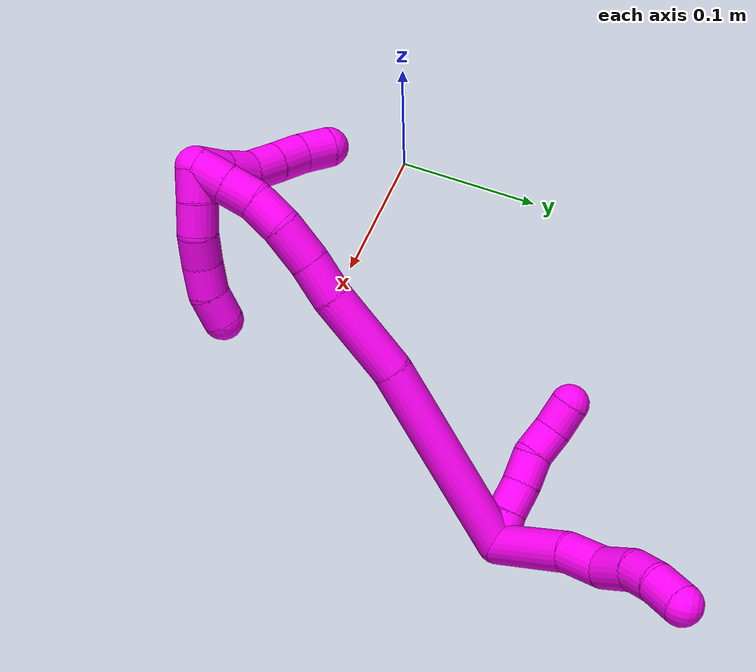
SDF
<sdf version="1.7">
 <world name="default">
  <model name="10">
   <static>0</static>
   <link name="10">
    <collision name="collision-cylinder-e_1_2_8">
     <pose>-0.006817 -0.016516 0.020872 0.669415 -0.25075 -0.087613</pose>
     <geometry><cylinder><radius>0.0125</radius><length>0.054951</length></cylinder></geometry>
     <surface>
      <friction><ode><mu>1.16</mu><mu2>1.16</mu2><slip1>0</slip1><slip2>0</slip2></ode></friction>
      <contact><ode><kp>1e+06</kp><kd>1</kd><max_vel>0</max_vel><min_depth>0.001</min_depth></ode></contact>
     </surface>
    </collision>
    <visual name="visual-cylinder-e_1_2_8">
     <pose>-0.006817 -0.016516 0.020872 0.669415 -0.25075 -0.087613</pose>
     <geometry><cylinder><radius>0.0125</radius><length>0.054951</length></cylinder></geometry>
     <material><ambient>1 0 0.964706 1</ambient></material>
    </visual>
    <collision name="collision-cylinder-e_2_8_9">
     <pose>-0.013803 -0.041739 0.052457 0.682459 -0.012135 -0.004309</pose>
     <geometry><cylinder><radius>0.0125</radius><length>0.027612</length></cylinder></geometry>
     <surface>
      <friction><ode><mu>1.16</mu><mu2>1.16</mu2><slip1>0</slip1><slip2>0</slip2></ode></friction>
      <contact><ode><kp>1e+06</kp><kd>1</kd><max_vel>0</max_vel><min_depth>0.001</min_depth></ode></contact>
     </surface>
    </collision>
    <visual name="visual-cylinder-e_2_8_9">
     <pose>-0.013803 -0.041739 0.052457 0.682459 -0.012135 -0.004309</pose>
     <geometry><cylinder><radius>0.0125</radius><length>0.027612</length></cylinder></geometry>
     <material><ambient>1 0 0.964706 1</ambient></material>
    </visual>
    <collision name="collision-cylinder-e_3_9_10">
     <pose>-0.017808 -0.059602 0.071115 0.856065 -0.306641 -0.140776</pose>
     <geometry><cylinder><radius>0.0125</radius><length>0.025431</length></cylinder></geometry>
     <surface>
      <friction><ode><mu>1.16</mu><mu2>1.16</mu2><slip1>0</slip1><slip2>0</slip2></ode></friction>
      <contact><ode><kp>1e+06</kp><kd>1</kd><max_vel>0</max_vel><min_depth>0.001</min_depth></ode></contact>
     </surface>
    </collision>
    <visual name="visual-cylinder-e_3_9_10">
     <pose>-0.017808 -0.059602 0.071115 0.856065 -0.306641 -0.140776</pose>
     <geometry><cylinder><radius>0.0125</radius><length>0.025431</length></cylinder></geometry>
     <material><ambient>1 0 0.964706 1</ambient></material>
    </visual>
    <collision name="collision-cylinder-e_4_10_11">
     <pose>-0.021675 -0.07676 0.085283 0.909912 -0.002795 -0.001367</pose>
     <geometry><cylinder><radius>0.0125</radius><length>0.020274</length></cylinder></geometry>
     <surface>
      <friction><ode><mu>1.16</mu><mu2>1.16</mu2><slip1>0</slip1><slip2>0</slip2></ode></friction>
      <contact><ode><kp>1e+06</kp><kd>1</kd><max_vel>0</max_vel><min_depth>0.001</min_depth></ode></contact>
     </surface>
    </collision>
    <visual name="visual-cylinder-e_4_10_11">
     <pose>-0.021675 -0.07676 0.085283 0.909912 -0.002795 -0.001367</pose>
     <geometry><cylinder><radius>0.0125</radius><length>0.020274</length></cylinder></geometry>
     <material><ambient>1 0 0.964706 1</ambient></material>
    </visual>
    <collision name="collision-cylinder-e_5_11_6">
     <pose>-0.019442 -0.092574 0.098712 0.825567 0.209646 0.092086</pose>
     <geometry><cylinder><radius>0.0125</radius><length>0.021732</length></cylinder></geometry>
     <surface>
      <friction><ode><mu>1.16</mu><mu2>1.16</mu2><slip1>0</slip1><slip2>0</slip2></ode></friction>
      <contact><ode><kp>1e+06</kp><kd>1</kd><max_vel>0</max_vel><min_depth>0.001</min_depth></ode></contact>
     </surface>
    </collision>
    <visual name="visual-cylinder-e_5_11_6">
     <pose>-0.019442 -0.092574 0.098712 0.825567 0.209646 0.092086</pose>
     <geometry><cylinder><radius>0.0125</radius><length>0.021732</length></cylinder></geometry>
     <material><ambient>1 0 0.964706 1</ambient></material>
    </visual>
    <collision name="collision-cylinder-e_1_2_12">
     <pose>-0.009189 0.003851 0.000857 -1.35177 -1.16529 0.972222</pose>
     <geometry><cylinder><radius>0.0125</radius><length>0.02</length></cylinder></geometry>
     <surface>
      <friction><ode><mu>1.16</mu><mu2>1.16</mu2><slip1>0</slip1><slip2>0</slip2></ode></friction>
      <contact><ode><kp>1e+06</kp><kd>1</kd><max_vel>0</max_vel><min_depth>0.001</min_depth></ode></contact>
     </surface>
    </collision>
    <visual name="visual-cylinder-e_1_2_12">
     <pose>-0.009189 0.003851 0.000857 -1.35177 -1.16529 0.972222</pose>
     <geometry><cylinder><radius>0.0125</radius><length>0.02</length></cylinder></geometry>
     <material><ambient>1 0 0.964706 1</ambient></material>
    </visual>
    <collision name="collision-cylinder-e_2_12_13">
     <pose>-0.027225 0.011523 0.004384 -0.961038 -1.08579 0.60945</pose>
     <geometry><cylinder><radius>0.0125</radius><length>0.02</length></cylinder></geometry>
     <surface>
      <friction><ode><mu>1.16</mu><mu2>1.16</mu2><slip1>0</slip1><slip2>0</slip2></ode></friction>
      <contact><ode><kp>1e+06</kp><kd>1</kd><max_vel>0</max_vel><min_depth>0.001</min_depth></ode></contact>
     </surface>
    </collision>
    <visual name="visual-cylinder-e_2_12_13">
     <pose>-0.027225 0.011523 0.004384 -0.961038 -1.08579 0.60945</pose>
     <geometry><cylinder><radius>0.0125</radius><length>0.02</length></cylinder></geometry>
     <material><ambient>1 0 0.964706 1</ambient></material>
    </visual>
    <collision name="collision-cylinder-e_3_13_14">
     <pose>-0.045553 0.018074 0.008685 -1.03209 -1.24732 0.775036</pose>
     <geometry><cylinder><radius>0.0125</radius><length>0.02</length></cylinder></geometry>
     <surface>
      <friction><ode><mu>1.16</mu><mu2>1.16</mu2><slip1>0</slip1><slip2>0</slip2></ode></friction>
      <contact><ode><kp>1e+06</kp><kd>1</kd><max_vel>0</max_vel><min_depth>0.001</min_depth></ode></contact>
     </surface>
    </collision>
    <visual name="visual-cylinder-e_3_13_14">
     <pose>-0.045553 0.018074 0.008685 -1.03209 -1.24732 0.775036</pose>
     <geometry><cylinder><radius>0.0125</radius><length>0.02</length></cylinder></geometry>
     <material><ambient>1 0 0.964706 1</ambient></material>
    </visual>
    <collision name="collision-cylinder-e_4_14_15">
     <pose>-0.063201 0.024484 0.014759 -0.691906 -0.955691 0.369088</pose>
     <geometry><cylinder><radius>0.0125</radius><length>0.02</length></cylinder></geometry>
     <surface>
      <friction><ode><mu>1.16</mu><mu2>1.16</mu2><slip1>0</slip1><slip2>0</slip2></ode></friction>
      <contact><ode><kp>1e+06</kp><kd>1</kd><max_vel>0</max_vel><min_depth>0.001</min_depth></ode></contact>
     </surface>
    </collision>
    <visual name="visual-cylinder-e_4_14_15">
     <pose>-0.063201 0.024484 0.014759 -0.691906 -0.955691 0.369088</pose>
     <geometry><cylinder><radius>0.0125</radius><length>0.02</length></cylinder></geometry>
     <material><ambient>1 0 0.964706 1</ambient></material>
    </visual>
    <collision name="collision-cylinder-e_5_15_5">
     <pose>-0.080659 0.028855 0.022836 -0.187622 -1.19191 0.12745</pose>
     <geometry><cylinder><radius>0.0125</radius><length>0.02</length></cylinder></geometry>
     <surface>
      <friction><ode><mu>1.16</mu><mu2>1.16</mu2><slip1>0</slip1><slip2>0</slip2></ode></friction>
      <contact><ode><kp>1e+06</kp><kd>1</kd><max_vel>0</max_vel><min_depth>0.001</min_depth></ode></contact>
     </surface>
    </collision>
    <visual name="visual-cylinder-e_5_15_5">
     <pose>-0.080659 0.028855 0.022836 -0.187622 -1.19191 0.12745</pose>
     <geometry><cylinder><radius>0.0125</radius><length>0.02</length></cylinder></geometry>
     <material><ambient>1 0 0.964706 1</ambient></material>
    </visual>
    <collision name="collision-cylinder-e_1_2_16">
     <pose>-0.048427 -0.009457 -0.041449 2.91726 -0.850331 -2.65395</pose>
     <geometry><cylinder><radius>0.0125</radius><length>0.128881</length></cylinder></geometry>
     <surface>
      <friction><ode><mu>1.16</mu><mu2>1.16</mu2><slip1>0</slip1><slip2>0</slip2></ode></friction>
      <contact><ode><kp>1e+06</kp><kd>1</kd><max_vel>0</max_vel><min_depth>0.001</min_depth></ode></contact>
     </surface>
    </collision>
    <visual name="visual-cylinder-e_1_2_16">
     <pose>-0.048427 -0.009457 -0.041449 2.91726 -0.850331 -2.65395</pose>
     <geometry><cylinder><radius>0.0125</radius><length>0.128881</length></cylinder></geometry>
     <material><ambient>1 0 0.964706 1</ambient></material>
    </visual>
    <collision name="collision-cylinder-e_2_16_17">
     <pose>-0.115494 -0.023056 -0.104225 2.94984 -0.709072 -2.63322</pose>
     <geometry><cylinder><radius>0.0125</radius><length>0.057252</length></cylinder></geometry>
     <surface>
      <friction><ode><mu>1.16</mu><mu2>1.16</mu2><slip1>0</slip1><slip2>0</slip2></ode></friction>
      <contact><ode><kp>1e+06</kp><kd>1</kd><max_vel>0</max_vel><min_depth>0.001</min_depth></ode></contact>
     </surface>
    </collision>
    <visual name="visual-cylinder-e_2_16_17">
     <pose>-0.115494 -0.023056 -0.104225 2.94984 -0.709072 -2.63322</pose>
     <geometry><cylinder><radius>0.0125</radius><length>0.057252</length></cylinder></geometry>
     <material><ambient>1 0 0.964706 1</ambient></material>
    </visual>
    <collision name="collision-cylinder-e_3_17_18">
     <pose>-0.143332 -0.028597 -0.134007 2.97741 -0.820847 -2.76784</pose>
     <geometry><cylinder><radius>0.0125</radius><length>0.025144</length></cylinder></geometry>
     <surface>
      <friction><ode><mu>1.16</mu><mu2>1.16</mu2><slip1>0</slip1><slip2>0</slip2></ode></friction>
      <contact><ode><kp>1e+06</kp><kd>1</kd><max_vel>0</max_vel><min_depth>0.001</min_depth></ode></contact>
     </surface>
    </collision>
    <visual name="visual-cylinder-e_3_17_18">
     <pose>-0.143332 -0.028597 -0.134007 2.97741 -0.820847 -2.76784</pose>
     <geometry><cylinder><radius>0.0125</radius><length>0.025144</length></cylinder></geometry>
     <material><ambient>1 0 0.964706 1</ambient></material>
    </visual>
    <collision name="collision-cylinder-e_4_18_19">
     <pose>-0.161594 -0.031944 -0.152422 2.94863 -0.728923 -2.6447</pose>
     <geometry><cylinder><radius>0.0125</radius><length>0.027215</length></cylinder></geometry>
     <surface>
      <friction><ode><mu>1.16</mu><mu2>1.16</mu2><slip1>0</slip1><slip2>0</slip2></ode></friction>
      <contact><ode><kp>1e+06</kp><kd>1</kd><max_vel>0</max_vel><min_depth>0.001</min_depth></ode></contact>
     </surface>
    </collision>
    <visual name="visual-cylinder-e_4_18_19">
     <pose>-0.161594 -0.031944 -0.152422 2.94863 -0.728923 -2.6447</pose>
     <geometry><cylinder><radius>0.0125</radius><length>0.027215</length></cylinder></geometry>
     <material><ambient>1 0 0.964706 1</ambient></material>
    </visual>
    <collision name="collision-cylinder-e_5_19_20">
     <pose>-0.176415 -0.033539 -0.171388 -3.10256 -0.568449 3.00816</pose>
     <geometry><cylinder><radius>0.0125</radius><length>0.021388</length></cylinder></geometry>
     <surface>
      <friction><ode><mu>1.16</mu><mu2>1.16</mu2><slip1>0</slip1><slip2>0</slip2></ode></friction>
      <contact><ode><kp>1e+06</kp><kd>1</kd><max_vel>0</max_vel><min_depth>0.001</min_depth></ode></contact>
     </surface>
    </collision>
    <visual name="visual-cylinder-e_5_19_20">
     <pose>-0.176415 -0.033539 -0.171388 -3.10256 -0.568449 3.00816</pose>
     <geometry><cylinder><radius>0.0125</radius><length>0.021388</length></cylinder></geometry>
     <material><ambient>1 0 0.964706 1</ambient></material>
    </visual>
    <collision name="collision-cylinder-e_6_20_21">
     <pose>-0.185304 -0.033054 -0.189892 -3.12764 -0.318552 3.05476</pose>
     <geometry><cylinder><radius>0.0125</radius><length>0.020004</length></cylinder></geometry>
     <surface>
      <friction><ode><mu>1.16</mu><mu2>1.16</mu2><slip1>0</slip1><slip2>0</slip2></ode></friction>
      <contact><ode><kp>1e+06</kp><kd>1</kd><max_vel>0</max_vel><min_depth>0.001</min_depth></ode></contact>
     </surface>
    </collision>
    <visual name="visual-cylinder-e_6_20_21">
     <pose>-0.185304 -0.033054 -0.189892 -3.12764 -0.318552 3.05476</pose>
     <geometry><cylinder><radius>0.0125</radius><length>0.020004</length></cylinder></geometry>
     <material><ambient>1 0 0.964706 1</ambient></material>
    </visual>
    <collision name="collision-cylinder-e_7_21_1">
     <pose>-0.191579 -0.032747 -0.208943 -3.12328 -0.317712 3.02742</pose>
     <geometry><cylinder><radius>0.0125</radius><length>0.020116</length></cylinder></geometry>
     <surface>
      <friction><ode><mu>1.16</mu><mu2>1.16</mu2><slip1>0</slip1><slip2>0</slip2></ode></friction>
      <contact><ode><kp>1e+06</kp><kd>1</kd><max_vel>0</max_vel><min_depth>0.001</min_depth></ode></contact>
     </surface>
    </collision>
    <visual name="visual-cylinder-e_7_21_1">
     <pose>-0.191579 -0.032747 -0.208943 -3.12328 -0.317712 3.02742</pose>
     <geometry><cylinder><radius>0.0125</radius><length>0.020116</length></cylinder></geometry>
     <material><ambient>1 0 0.964706 1</ambient></material>
    </visual>
    <collision name="collision-cylinder-e_1_1_22">
     <pose>-0.194338 -0.02497 -0.21201 -0.864499 0.038237 -0.017642</pose>
     <geometry><cylinder><radius>0.0125</radius><length>0.02</length></cylinder></geometry>
     <surface>
      <friction><ode><mu>1.16</mu><mu2>1.16</mu2><slip1>0</slip1><slip2>0</slip2></ode></friction>
      <contact><ode><kp>1e+06</kp><kd>1</kd><max_vel>0</max_vel><min_depth>0.001</min_depth></ode></contact>
     </surface>
    </collision>
    <visual name="visual-cylinder-e_1_1_22">
     <pose>-0.194338 -0.02497 -0.21201 -0.864499 0.038237 -0.017642</pose>
     <geometry><cylinder><radius>0.0125</radius><length>0.02</length></cylinder></geometry>
     <material><ambient>1 0 0.964706 1</ambient></material>
    </visual>
    <collision name="collision-cylinder-e_2_22_23">
     <pose>-0.194692 -0.00957 -0.199307 -0.897642 -0.073603 0.03546</pose>
     <geometry><cylinder><radius>0.0125</radius><length>0.02</length></cylinder></geometry>
     <surface>
      <friction><ode><mu>1.16</mu><mu2>1.16</mu2><slip1>0</slip1><slip2>0</slip2></ode></friction>
      <contact><ode><kp>1e+06</kp><kd>1</kd><max_vel>0</max_vel><min_depth>0.001</min_depth></ode></contact>
     </surface>
    </collision>
    <visual name="visual-cylinder-e_2_22_23">
     <pose>-0.194692 -0.00957 -0.199307 -0.897642 -0.073603 0.03546</pose>
     <geometry><cylinder><radius>0.0125</radius><length>0.02</length></cylinder></geometry>
     <material><ambient>1 0 0.964706 1</ambient></material>
    </visual>
    <collision name="collision-cylinder-e_3_23_24">
     <pose>-0.198978 0.005327 -0.187008 -0.862496 -0.36306 0.168515</pose>
     <geometry><cylinder><radius>0.0125</radius><length>0.02</length></cylinder></geometry>
     <surface>
      <friction><ode><mu>1.16</mu><mu2>1.16</mu2><slip1>0</slip1><slip2>0</slip2></ode></friction>
      <contact><ode><kp>1e+06</kp><kd>1</kd><max_vel>0</max_vel><min_depth>0.001</min_depth></ode></contact>
     </surface>
    </collision>
    <visual name="visual-cylinder-e_3_23_24">
     <pose>-0.198978 0.005327 -0.187008 -0.862496 -0.36306 0.168515</pose>
     <geometry><cylinder><radius>0.0125</radius><length>0.02</length></cylinder></geometry>
     <material><ambient>1 0 0.964706 1</ambient></material>
    </visual>
    <collision name="collision-cylinder-e_4_24_25">
     <pose>-0.206335 0.019429 -0.174886 -0.859009 -0.390341 0.180597</pose>
     <geometry><cylinder><radius>0.0125</radius><length>0.02</length></cylinder></geometry>
     <surface>
      <friction><ode><mu>1.16</mu><mu2>1.16</mu2><slip1>0</slip1><slip2>0</slip2></ode></friction>
      <contact><ode><kp>1e+06</kp><kd>1</kd><max_vel>0</max_vel><min_depth>0.001</min_depth></ode></contact>
     </surface>
    </collision>
    <visual name="visual-cylinder-e_4_24_25">
     <pose>-0.206335 0.019429 -0.174886 -0.859009 -0.390341 0.180597</pose>
     <geometry><cylinder><radius>0.0125</radius><length>0.02</length></cylinder></geometry>
     <material><ambient>1 0 0.964706 1</ambient></material>
    </visual>
    <collision name="collision-cylinder-e_5_25_4">
     <pose>-0.213627 0.031901 -0.161235 -0.623186 -0.356259 0.115845</pose>
     <geometry><cylinder><radius>0.0125</radius><length>0.02</length></cylinder></geometry>
     <surface>
      <friction><ode><mu>1.16</mu><mu2>1.16</mu2><slip1>0</slip1><slip2>0</slip2></ode></friction>
      <contact><ode><kp>1e+06</kp><kd>1</kd><max_vel>0</max_vel><min_depth>0.001</min_depth></ode></contact>
     </surface>
    </collision>
    <visual name="visual-cylinder-e_5_25_4">
     <pose>-0.213627 0.031901 -0.161235 -0.623186 -0.356259 0.115845</pose>
     <geometry><cylinder><radius>0.0125</radius><length>0.02</length></cylinder></geometry>
     <material><ambient>1 0 0.964706 1</ambient></material>
    </visual>
    <collision name="collision-cylinder-e_1_1_26">
     <pose>-0.184935 -0.031821 -0.216576 -0.372748 1.3632 -0.303612</pose>
     <geometry><cylinder><radius>0.0125</radius><length>0.02</length></cylinder></geometry>
     <surface>
      <friction><ode><mu>1.16</mu><mu2>1.16</mu2><slip1>0</slip1><slip2>0</slip2></ode></friction>
      <contact><ode><kp>1e+06</kp><kd>1</kd><max_vel>0</max_vel><min_depth>0.001</min_depth></ode></contact>
     </surface>
    </collision>
    <visual name="visual-cylinder-e_1_1_26">
     <pose>-0.184935 -0.031821 -0.216576 -0.372748 1.3632 -0.303612</pose>
     <geometry><cylinder><radius>0.0125</radius><length>0.02</length></cylinder></geometry>
     <material><ambient>1 0 0.964706 1</ambient></material>
    </visual>
    <collision name="collision-cylinder-e_2_26_27">
     <pose>-0.165397 -0.029388 -0.213225 -0.865862 1.34807 -0.707356</pose>
     <geometry><cylinder><radius>0.0125</radius><length>0.02</length></cylinder></geometry>
     <surface>
      <friction><ode><mu>1.16</mu><mu2>1.16</mu2><slip1>0</slip1><slip2>0</slip2></ode></friction>
      <contact><ode><kp>1e+06</kp><kd>1</kd><max_vel>0</max_vel><min_depth>0.001</min_depth></ode></contact>
     </surface>
    </collision>
    <visual name="visual-cylinder-e_2_26_27">
     <pose>-0.165397 -0.029388 -0.213225 -0.865862 1.34807 -0.707356</pose>
     <geometry><cylinder><radius>0.0125</radius><length>0.02</length></cylinder></geometry>
     <material><ambient>1 0 0.964706 1</ambient></material>
    </visual>
    <collision name="collision-cylinder-e_3_27_28">
     <pose>-0.14667 -0.02378 -0.209781 -1.09709 1.1139 -0.727234</pose>
     <geometry><cylinder><radius>0.0125</radius><length>0.02</length></cylinder></geometry>
     <surface>
      <friction><ode><mu>1.16</mu><mu2>1.16</mu2><slip1>0</slip1><slip2>0</slip2></ode></friction>
      <contact><ode><kp>1e+06</kp><kd>1</kd><max_vel>0</max_vel><min_depth>0.001</min_depth></ode></contact>
     </surface>
    </collision>
    <visual name="visual-cylinder-e_3_27_28">
     <pose>-0.14667 -0.02378 -0.209781 -1.09709 1.1139 -0.727234</pose>
     <geometry><cylinder><radius>0.0125</radius><length>0.02</length></cylinder></geometry>
     <material><ambient>1 0 0.964706 1</ambient></material>
    </visual>
    <collision name="collision-cylinder-e_4_28_29">
     <pose>-0.128542 -0.017087 -0.204846 -0.758047 1.15653 -0.50865</pose>
     <geometry><cylinder><radius>0.0125</radius><length>0.02</length></cylinder></geometry>
     <surface>
      <friction><ode><mu>1.16</mu><mu2>1.16</mu2><slip1>0</slip1><slip2>0</slip2></ode></friction>
      <contact><ode><kp>1e+06</kp><kd>1</kd><max_vel>0</max_vel><min_depth>0.001</min_depth></ode></contact>
     </surface>
    </collision>
    <visual name="visual-cylinder-e_4_28_29">
     <pose>-0.128542 -0.017087 -0.204846 -0.758047 1.15653 -0.50865</pose>
     <geometry><cylinder><radius>0.0125</radius><length>0.02</length></cylinder></geometry>
     <material><ambient>1 0 0.964706 1</ambient></material>
    </visual>
    <collision name="collision-cylinder-e_5_29_3">
     <pose>-0.111594 -0.010768 -0.19676 -0.602496 0.893575 -0.295546</pose>
     <geometry><cylinder><radius>0.0125</radius><length>0.02</length></cylinder></geometry>
     <surface>
      <friction><ode><mu>1.16</mu><mu2>1.16</mu2><slip1>0</slip1><slip2>0</slip2></ode></friction>
      <contact><ode><kp>1e+06</kp><kd>1</kd><max_vel>0</max_vel><min_depth>0.001</min_depth></ode></contact>
     </surface>
    </collision>
    <visual name="visual-cylinder-e_5_29_3">
     <pose>-0.111594 -0.010768 -0.19676 -0.602496 0.893575 -0.295546</pose>
     <geometry><cylinder><radius>0.0125</radius><length>0.02</length></cylinder></geometry>
     <material><ambient>1 0 0.964706 1</ambient></material>
    </visual>
    <collision name="collision-sphere-3">
     <pose>-0.103801 -0.007217 -0.191597 0 -0 0</pose>
     <geometry><sphere><radius>0.0125</radius></sphere></geometry>
     <surface>
      <friction><ode><mu>1.16</mu><mu2>1.16</mu2><slip1>0</slip1><slip2>0</slip2></ode></friction>
      <contact><ode><kp>1e+06</kp><kd>1</kd><max_vel>0</max_vel><min_depth>0.001</min_depth></ode></contact>
     </surface>
    </collision>
    <visual name="visual-sphere-3">
     <pose>-0.103801 -0.007217 -0.191597 0 -0 0</pose>
     <geometry><sphere><radius>0.0125</radius></sphere></geometry>
     <material><ambient>1 0 0.964706 1</ambient></material>
    </visual>
    <collision name="collision-sphere-29">
     <pose>-0.119387 -0.014319 -0.201923 0 -0 0</pose>
     <geometry><sphere><radius>0.0125</radius></sphere></geometry>
     <surface>
      <friction><ode><mu>1.16</mu><mu2>1.16</mu2><slip1>0</slip1><slip2>0</slip2></ode></friction>
      <contact><ode><kp>1e+06</kp><kd>1</kd><max_vel>0</max_vel><min_depth>0.001</min_depth></ode></contact>
     </surface>
    </collision>
    <visual name="visual-sphere-29">
     <pose>-0.119387 -0.014319 -0.201923 0 -0 0</pose>
     <geometry><sphere><radius>0.0125</radius></sphere></geometry>
     <material><ambient>1 0 0.964706 1</ambient></material>
    </visual>
    <collision name="collision-sphere-28">
     <pose>-0.137696 -0.019854 -0.207769 0 -0 0</pose>
     <geometry><sphere><radius>0.0125</radius></sphere></geometry>
     <surface>
      <friction><ode><mu>1.16</mu><mu2>1.16</mu2><slip1>0</slip1><slip2>0</slip2></ode></friction>
      <contact><ode><kp>1e+06</kp><kd>1</kd><max_vel>0</max_vel><min_depth>0.001</min_depth></ode></contact>
     </surface>
    </collision>
    <visual name="visual-sphere-28">
     <pose>-0.137696 -0.019854 -0.207769 0 -0 0</pose>
     <geometry><sphere><radius>0.0125</radius></sphere></geometry>
     <material><ambient>1 0 0.964706 1</ambient></material>
    </visual>
    <collision name="collision-sphere-27">
     <pose>-0.155644 -0.027706 -0.211794 0 -0 0</pose>
     <geometry><sphere><radius>0.0125</radius></sphere></geometry>
     <surface>
      <friction><ode><mu>1.16</mu><mu2>1.16</mu2><slip1>0</slip1><slip2>0</slip2></ode></friction>
      <contact><ode><kp>1e+06</kp><kd>1</kd><max_vel>0</max_vel><min_depth>0.001</min_depth></ode></contact>
     </surface>
    </collision>
    <visual name="visual-sphere-27">
     <pose>-0.155644 -0.027706 -0.211794 0 -0 0</pose>
     <geometry><sphere><radius>0.0125</radius></sphere></geometry>
     <material><ambient>1 0 0.964706 1</ambient></material>
    </visual>
    <collision name="collision-sphere-26">
     <pose>-0.17515 -0.031071 -0.214656 0 -0 0</pose>
     <geometry><sphere><radius>0.0125</radius></sphere></geometry>
     <surface>
      <friction><ode><mu>1.16</mu><mu2>1.16</mu2><slip1>0</slip1><slip2>0</slip2></ode></friction>
      <contact><ode><kp>1e+06</kp><kd>1</kd><max_vel>0</max_vel><min_depth>0.001</min_depth></ode></contact>
     </surface>
    </collision>
    <visual name="visual-sphere-26">
     <pose>-0.17515 -0.031071 -0.214656 0 -0 0</pose>
     <geometry><sphere><radius>0.0125</radius></sphere></geometry>
     <material><ambient>1 0 0.964706 1</ambient></material>
    </visual>
    <collision name="collision-sphere-4">
     <pose>-0.217115 0.037371 -0.153625 0 -0 0</pose>
     <geometry><sphere><radius>0.0125</radius></sphere></geometry>
     <surface>
      <friction><ode><mu>1.16</mu><mu2>1.16</mu2><slip1>0</slip1><slip2>0</slip2></ode></friction>
      <contact><ode><kp>1e+06</kp><kd>1</kd><max_vel>0</max_vel><min_depth>0.001</min_depth></ode></contact>
     </surface>
    </collision>
    <visual name="visual-sphere-4">
     <pose>-0.217115 0.037371 -0.153625 0 -0 0</pose>
     <geometry><sphere><radius>0.0125</radius></sphere></geometry>
     <material><ambient>1 0 0.964706 1</ambient></material>
    </visual>
    <collision name="collision-sphere-25">
     <pose>-0.21014 0.026431 -0.168845 0 -0 0</pose>
     <geometry><sphere><radius>0.0125</radius></sphere></geometry>
     <surface>
      <friction><ode><mu>1.16</mu><mu2>1.16</mu2><slip1>0</slip1><slip2>0</slip2></ode></friction>
      <contact><ode><kp>1e+06</kp><kd>1</kd><max_vel>0</max_vel><min_depth>0.001</min_depth></ode></contact>
     </surface>
    </collision>
    <visual name="visual-sphere-25">
     <pose>-0.21014 0.026431 -0.168845 0 -0 0</pose>
     <geometry><sphere><radius>0.0125</radius></sphere></geometry>
     <material><ambient>1 0 0.964706 1</ambient></material>
    </visual>
    <collision name="collision-sphere-24">
     <pose>-0.20253 0.012426 -0.180926 0 -0 0</pose>
     <geometry><sphere><radius>0.0125</radius></sphere></geometry>
     <surface>
      <friction><ode><mu>1.16</mu><mu2>1.16</mu2><slip1>0</slip1><slip2>0</slip2></ode></friction>
      <contact><ode><kp>1e+06</kp><kd>1</kd><max_vel>0</max_vel><min_depth>0.001</min_depth></ode></contact>
     </surface>
    </collision>
    <visual name="visual-sphere-24">
     <pose>-0.20253 0.012426 -0.180926 0 -0 0</pose>
     <geometry><sphere><radius>0.0125</radius></sphere></geometry>
     <material><ambient>1 0 0.964706 1</ambient></material>
    </visual>
    <collision name="collision-sphere-23">
     <pose>-0.195427 -0.001773 -0.193089 0 -0 0</pose>
     <geometry><sphere><radius>0.0125</radius></sphere></geometry>
     <surface>
      <friction><ode><mu>1.16</mu><mu2>1.16</mu2><slip1>0</slip1><slip2>0</slip2></ode></friction>
      <contact><ode><kp>1e+06</kp><kd>1</kd><max_vel>0</max_vel><min_depth>0.001</min_depth></ode></contact>
     </surface>
    </collision>
    <visual name="visual-sphere-23">
     <pose>-0.195427 -0.001773 -0.193089 0 -0 0</pose>
     <geometry><sphere><radius>0.0125</radius></sphere></geometry>
     <material><ambient>1 0 0.964706 1</ambient></material>
    </visual>
    <collision name="collision-sphere-22">
     <pose>-0.193956 -0.017368 -0.205525 0 -0 0</pose>
     <geometry><sphere><radius>0.0125</radius></sphere></geometry>
     <surface>
      <friction><ode><mu>1.16</mu><mu2>1.16</mu2><slip1>0</slip1><slip2>0</slip2></ode></friction>
      <contact><ode><kp>1e+06</kp><kd>1</kd><max_vel>0</max_vel><min_depth>0.001</min_depth></ode></contact>
     </surface>
    </collision>
    <visual name="visual-sphere-22">
     <pose>-0.193956 -0.017368 -0.205525 0 -0 0</pose>
     <geometry><sphere><radius>0.0125</radius></sphere></geometry>
     <material><ambient>1 0 0.964706 1</ambient></material>
    </visual>
    <collision name="collision-sphere-1">
     <pose>-0.194721 -0.032572 -0.218496 0 -0 0</pose>
     <geometry><sphere><radius>0.0125</radius></sphere></geometry>
     <surface>
      <friction><ode><mu>1.16</mu><mu2>1.16</mu2><slip1>0</slip1><slip2>0</slip2></ode></friction>
      <contact><ode><kp>1e+06</kp><kd>1</kd><max_vel>0</max_vel><min_depth>0.001</min_depth></ode></contact>
     </surface>
    </collision>
    <visual name="visual-sphere-1">
     <pose>-0.194721 -0.032572 -0.218496 0 -0 0</pose>
     <geometry><sphere><radius>0.0125</radius></sphere></geometry>
     <material><ambient>1 0 0.964706 1</ambient></material>
    </visual>
    <collision name="collision-sphere-21">
     <pose>-0.188437 -0.032922 -0.199389 0 -0 0</pose>
     <geometry><sphere><radius>0.0125</radius></sphere></geometry>
     <surface>
      <friction><ode><mu>1.16</mu><mu2>1.16</mu2><slip1>0</slip1><slip2>0</slip2></ode></friction>
      <contact><ode><kp>1e+06</kp><kd>1</kd><max_vel>0</max_vel><min_depth>0.001</min_depth></ode></contact>
     </surface>
    </collision>
    <visual name="visual-sphere-21">
     <pose>-0.188437 -0.032922 -0.199389 0 -0 0</pose>
     <geometry><sphere><radius>0.0125</radius></sphere></geometry>
     <material><ambient>1 0 0.964706 1</ambient></material>
    </visual>
    <collision name="collision-sphere-6">
     <pose>-0.017181 -0.100384 0.10592 0 -0 0</pose>
     <geometry><sphere><radius>0.0125</radius></sphere></geometry>
     <surface>
      <friction><ode><mu>1.16</mu><mu2>1.16</mu2><slip1>0</slip1><slip2>0</slip2></ode></friction>
      <contact><ode><kp>1e+06</kp><kd>1</kd><max_vel>0</max_vel><min_depth>0.001</min_depth></ode></contact>
     </surface>
    </collision>
    <visual name="visual-sphere-6">
     <pose>-0.017181 -0.100384 0.10592 0 -0 0</pose>
     <geometry><sphere><radius>0.0125</radius></sphere></geometry>
     <material><ambient>1 0 0.964706 1</ambient></material>
    </visual>
    <collision name="collision-sphere-11">
     <pose>-0.021703 -0.084763 0.091505 0 -0 0</pose>
     <geometry><sphere><radius>0.0125</radius></sphere></geometry>
     <surface>
      <friction><ode><mu>1.16</mu><mu2>1.16</mu2><slip1>0</slip1><slip2>0</slip2></ode></friction>
      <contact><ode><kp>1e+06</kp><kd>1</kd><max_vel>0</max_vel><min_depth>0.001</min_depth></ode></contact>
     </surface>
    </collision>
    <visual name="visual-sphere-11">
     <pose>-0.021703 -0.084763 0.091505 0 -0 0</pose>
     <geometry><sphere><radius>0.0125</radius></sphere></geometry>
     <material><ambient>1 0 0.964706 1</ambient></material>
    </visual>
    <collision name="collision-sphere-10">
     <pose>-0.021647 -0.068757 0.079061 0 -0 0</pose>
     <geometry><sphere><radius>0.0125</radius></sphere></geometry>
     <surface>
      <friction><ode><mu>1.16</mu><mu2>1.16</mu2><slip1>0</slip1><slip2>0</slip2></ode></friction>
      <contact><ode><kp>1e+06</kp><kd>1</kd><max_vel>0</max_vel><min_depth>0.001</min_depth></ode></contact>
     </surface>
    </collision>
    <visual name="visual-sphere-10">
     <pose>-0.021647 -0.068757 0.079061 0 -0 0</pose>
     <geometry><sphere><radius>0.0125</radius></sphere></geometry>
     <material><ambient>1 0 0.964706 1</ambient></material>
    </visual>
    <collision name="collision-sphere-9">
     <pose>-0.01397 -0.050446 0.06317 0 -0 0</pose>
     <geometry><sphere><radius>0.0125</radius></sphere></geometry>
     <surface>
      <friction><ode><mu>1.16</mu><mu2>1.16</mu2><slip1>0</slip1><slip2>0</slip2></ode></friction>
      <contact><ode><kp>1e+06</kp><kd>1</kd><max_vel>0</max_vel><min_depth>0.001</min_depth></ode></contact>
     </surface>
    </collision>
    <visual name="visual-sphere-9">
     <pose>-0.01397 -0.050446 0.06317 0 -0 0</pose>
     <geometry><sphere><radius>0.0125</radius></sphere></geometry>
     <material><ambient>1 0 0.964706 1</ambient></material>
    </visual>
    <collision name="collision-sphere-2">
     <geometry><sphere><radius>0.0125</radius></sphere></geometry>
     <surface>
      <friction><ode><mu>1.16</mu><mu2>1.16</mu2><slip1>0</slip1><slip2>0</slip2></ode></friction>
      <contact><ode><kp>1e+06</kp><kd>1</kd><max_vel>0</max_vel><min_depth>0.001</min_depth></ode></contact>
     </surface>
    </collision>
    <visual name="visual-sphere-2">
     <geometry><sphere><radius>0.0125</radius></sphere></geometry>
     <material><ambient>1 0 0.964706 1</ambient></material>
    </visual>
    <collision name="collision-sphere-19">
     <pose>-0.170658 -0.03389 -0.162383 0 -0 0</pose>
     <geometry><sphere><radius>0.0125</radius></sphere></geometry>
     <surface>
      <friction><ode><mu>1.16</mu><mu2>1.16</mu2><slip1>0</slip1><slip2>0</slip2></ode></friction>
      <contact><ode><kp>1e+06</kp><kd>1</kd><max_vel>0</max_vel><min_depth>0.001</min_depth></ode></contact>
     </surface>
    </collision>
    <visual name="visual-sphere-19">
     <pose>-0.170658 -0.03389 -0.162383 0 -0 0</pose>
     <geometry><sphere><radius>0.0125</radius></sphere></geometry>
     <material><ambient>1 0 0.964706 1</ambient></material>
    </visual>
    <collision name="collision-sphere-8">
     <pose>-0.013635 -0.033032 0.041744 0 -0 0</pose>
     <geometry><sphere><radius>0.0125</radius></sphere></geometry>
     <surface>
      <friction><ode><mu>1.16</mu><mu2>1.16</mu2><slip1>0</slip1><slip2>0</slip2></ode></friction>
      <contact><ode><kp>1e+06</kp><kd>1</kd><max_vel>0</max_vel><min_depth>0.001</min_depth></ode></contact>
     </surface>
    </collision>
    <visual name="visual-sphere-8">
     <pose>-0.013635 -0.033032 0.041744 0 -0 0</pose>
     <geometry><sphere><radius>0.0125</radius></sphere></geometry>
     <material><ambient>1 0 0.964706 1</ambient></material>
    </visual>
    <collision name="collision-sphere-12">
     <pose>-0.018378 0.007701 0.001714 0 -0 0</pose>
     <geometry><sphere><radius>0.0125</radius></sphere></geometry>
     <surface>
      <friction><ode><mu>1.16</mu><mu2>1.16</mu2><slip1>0</slip1><slip2>0</slip2></ode></friction>
      <contact><ode><kp>1e+06</kp><kd>1</kd><max_vel>0</max_vel><min_depth>0.001</min_depth></ode></contact>
     </surface>
    </collision>
    <visual name="visual-sphere-12">
     <pose>-0.018378 0.007701 0.001714 0 -0 0</pose>
     <geometry><sphere><radius>0.0125</radius></sphere></geometry>
     <material><ambient>1 0 0.964706 1</ambient></material>
    </visual>
    <collision name="collision-sphere-13">
     <pose>-0.036072 0.015345 0.007054 0 -0 0</pose>
     <geometry><sphere><radius>0.0125</radius></sphere></geometry>
     <surface>
      <friction><ode><mu>1.16</mu><mu2>1.16</mu2><slip1>0</slip1><slip2>0</slip2></ode></friction>
      <contact><ode><kp>1e+06</kp><kd>1</kd><max_vel>0</max_vel><min_depth>0.001</min_depth></ode></contact>
     </surface>
    </collision>
    <visual name="visual-sphere-13">
     <pose>-0.036072 0.015345 0.007054 0 -0 0</pose>
     <geometry><sphere><radius>0.0125</radius></sphere></geometry>
     <material><ambient>1 0 0.964706 1</ambient></material>
    </visual>
    <collision name="collision-sphere-14">
     <pose>-0.055034 0.020802 0.010315 0 -0 0</pose>
     <geometry><sphere><radius>0.0125</radius></sphere></geometry>
     <surface>
      <friction><ode><mu>1.16</mu><mu2>1.16</mu2><slip1>0</slip1><slip2>0</slip2></ode></friction>
      <contact><ode><kp>1e+06</kp><kd>1</kd><max_vel>0</max_vel><min_depth>0.001</min_depth></ode></contact>
     </surface>
    </collision>
    <visual name="visual-sphere-14">
     <pose>-0.055034 0.020802 0.010315 0 -0 0</pose>
     <geometry><sphere><radius>0.0125</radius></sphere></geometry>
     <material><ambient>1 0 0.964706 1</ambient></material>
    </visual>
    <collision name="collision-sphere-15">
     <pose>-0.071368 0.028165 0.019202 0 -0 0</pose>
     <geometry><sphere><radius>0.0125</radius></sphere></geometry>
     <surface>
      <friction><ode><mu>1.16</mu><mu2>1.16</mu2><slip1>0</slip1><slip2>0</slip2></ode></friction>
      <contact><ode><kp>1e+06</kp><kd>1</kd><max_vel>0</max_vel><min_depth>0.001</min_depth></ode></contact>
     </surface>
    </collision>
    <visual name="visual-sphere-15">
     <pose>-0.071368 0.028165 0.019202 0 -0 0</pose>
     <geometry><sphere><radius>0.0125</radius></sphere></geometry>
     <material><ambient>1 0 0.964706 1</ambient></material>
    </visual>
    <collision name="collision-sphere-5">
     <pose>-0.08995 0.029545 0.02647 0 -0 0</pose>
     <geometry><sphere><radius>0.0125</radius></sphere></geometry>
     <surface>
      <friction><ode><mu>1.16</mu><mu2>1.16</mu2><slip1>0</slip1><slip2>0</slip2></ode></friction>
      <contact><ode><kp>1e+06</kp><kd>1</kd><max_vel>0</max_vel><min_depth>0.001</min_depth></ode></contact>
     </surface>
    </collision>
    <visual name="visual-sphere-5">
     <pose>-0.08995 0.029545 0.02647 0 -0 0</pose>
     <geometry><sphere><radius>0.0125</radius></sphere></geometry>
     <material><ambient>1 0 0.964706 1</ambient></material>
    </visual>
    <collision name="collision-sphere-16">
     <pose>-0.096854 -0.018915 -0.082897 0 -0 0</pose>
     <geometry><sphere><radius>0.0125</radius></sphere></geometry>
     <surface>
      <friction><ode><mu>1.16</mu><mu2>1.16</mu2><slip1>0</slip1><slip2>0</slip2></ode></friction>
      <contact><ode><kp>1e+06</kp><kd>1</kd><max_vel>0</max_vel><min_depth>0.001</min_depth></ode></contact>
     </surface>
    </collision>
    <visual name="visual-sphere-16">
     <pose>-0.096854 -0.018915 -0.082897 0 -0 0</pose>
     <geometry><sphere><radius>0.0125</radius></sphere></geometry>
     <material><ambient>1 0 0.964706 1</ambient></material>
    </visual>
    <collision name="collision-sphere-17">
     <pose>-0.134133 -0.027196 -0.125553 0 -0 0</pose>
     <geometry><sphere><radius>0.0125</radius></sphere></geometry>
     <surface>
      <friction><ode><mu>1.16</mu><mu2>1.16</mu2><slip1>0</slip1><slip2>0</slip2></ode></friction>
      <contact><ode><kp>1e+06</kp><kd>1</kd><max_vel>0</max_vel><min_depth>0.001</min_depth></ode></contact>
     </surface>
    </collision>
    <visual name="visual-sphere-17">
     <pose>-0.134133 -0.027196 -0.125553 0 -0 0</pose>
     <geometry><sphere><radius>0.0125</radius></sphere></geometry>
     <material><ambient>1 0 0.964706 1</ambient></material>
    </visual>
    <collision name="collision-sphere-18">
     <pose>-0.152531 -0.029997 -0.14246 0 -0 0</pose>
     <geometry><sphere><radius>0.0125</radius></sphere></geometry>
     <surface>
      <friction><ode><mu>1.16</mu><mu2>1.16</mu2><slip1>0</slip1><slip2>0</slip2></ode></friction>
      <contact><ode><kp>1e+06</kp><kd>1</kd><max_vel>0</max_vel><min_depth>0.001</min_depth></ode></contact>
     </surface>
    </collision>
    <visual name="visual-sphere-18">
     <pose>-0.152531 -0.029997 -0.14246 0 -0 0</pose>
     <geometry><sphere><radius>0.0125</radius></sphere></geometry>
     <material><ambient>1 0 0.964706 1</ambient></material>
    </visual>
    <collision name="collision-sphere-20">
     <pose>-0.182171 -0.033187 -0.180394 0 -0 0</pose>
     <geometry><sphere><radius>0.0125</radius></sphere></geometry>
     <surface>
      <friction><ode><mu>1.16</mu><mu2>1.16</mu2><slip1>0</slip1><slip2>0</slip2></ode></friction>
      <contact><ode><kp>1e+06</kp><kd>1</kd><max_vel>0</max_vel><min_depth>0.001</min_depth></ode></contact>
     </surface>
    </collision>
    <visual name="visual-sphere-20">
     <pose>-0.182171 -0.033187 -0.180394 0 -0 0</pose>
     <geometry><sphere><radius>0.0125</radius></sphere></geometry>
     <material><ambient>1 0 0.964706 1</ambient></material>
    </visual>
    <inertial>
     <pose>-0.098238 -0.01785 -0.080931 0 -0 0</pose>
     <mass>0.75</mass>
     <inertia>
      <ixx>-0.000174</ixx>
      <ixy>0</ixy>
      <ixz>0</ixz>
      <iyy>0.00017</iyy>
      <iyz>0</iyz>
      <izz>0.000198</izz>
     </inertia>
    </inertial>
   </link>
   <pose>0.266262 0.169758 0.012592 -1.64436 0.720834 0.119477</pose>
  </model>
 </world>
</sdf>
